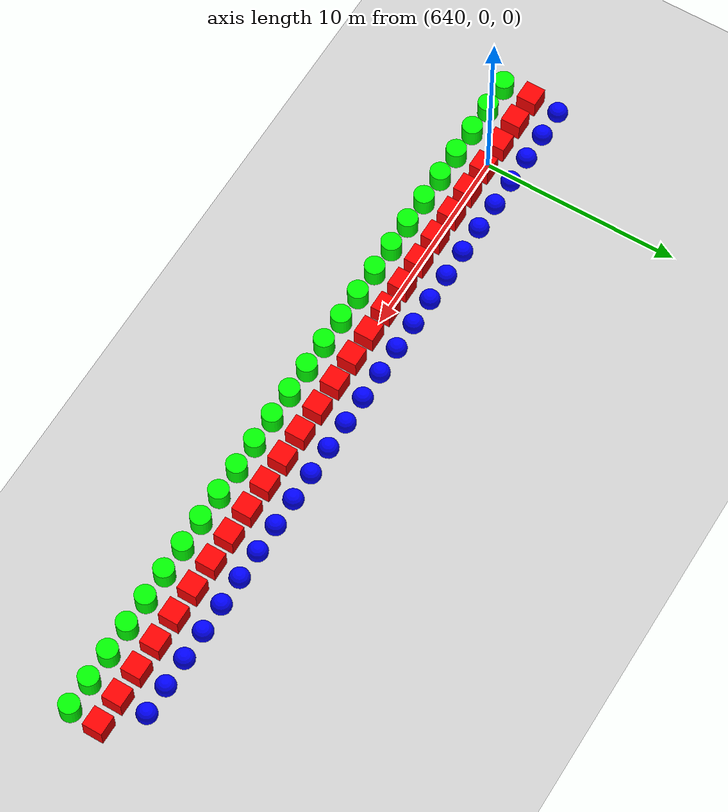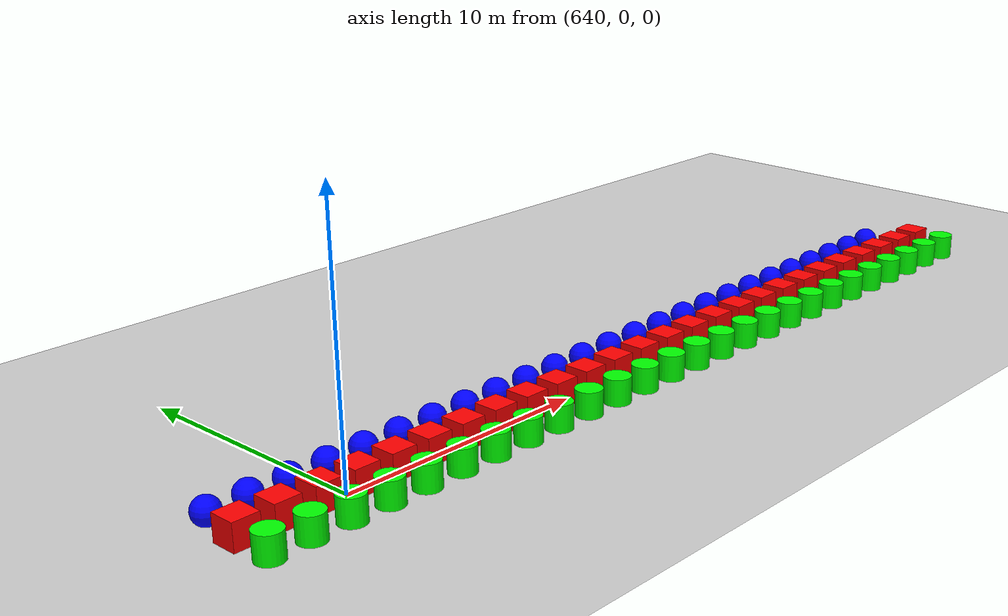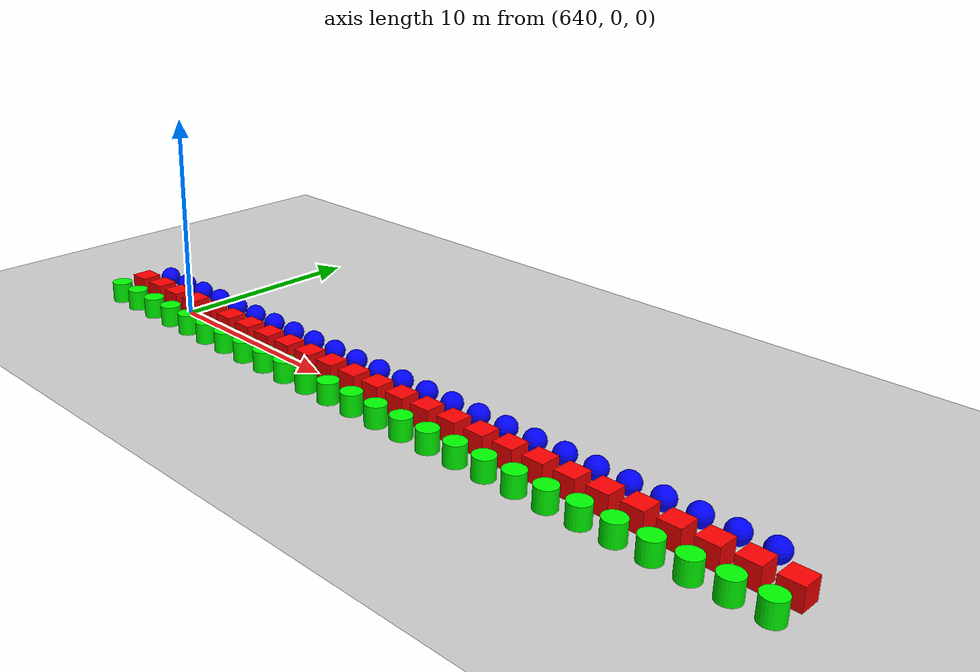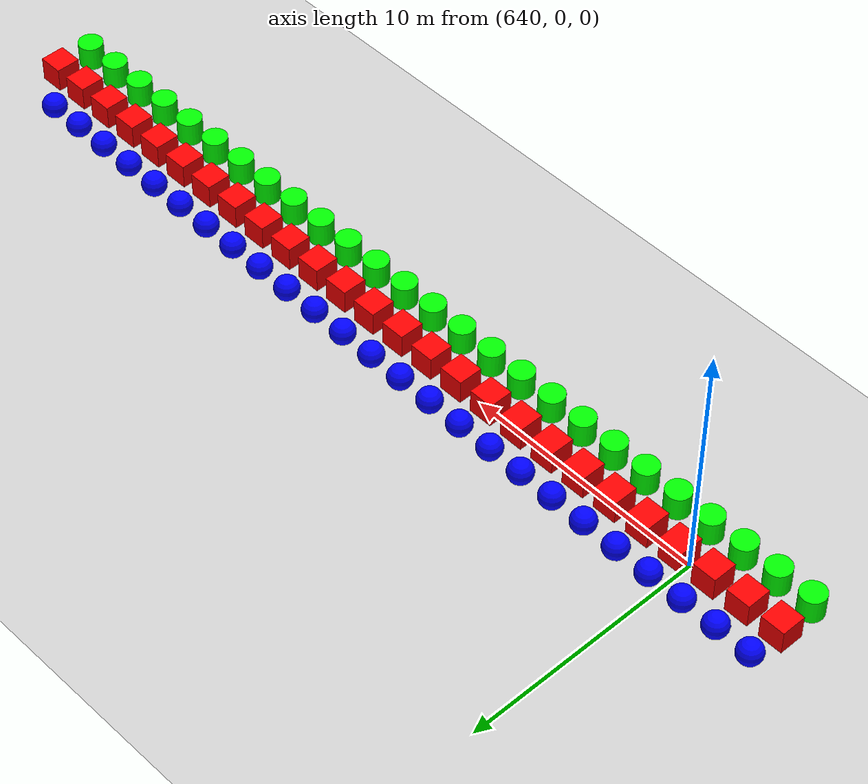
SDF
<sdf version="1.6">
 <world name="shapes">
  <model name="ground_plane">
   <static>true</static>
   <link name="link">
    <collision name="collision">
     <geometry><plane><normal>0 0 1</normal><size>100 100</size></plane></geometry>
    </collision>
    <visual name="visual">
     <geometry><plane><normal>0 0 1</normal><size>100 100</size></plane></geometry>
     <material>
      <ambient>0.8 0.8 0.8 1</ambient>
      <diffuse>0.8 0.8 0.8 1</diffuse>
      <specular>0.8 0.8 0.8 1</specular>
     </material>
    </visual>
   </link>
  </model>
  <model name="box_924">
   <static>false</static>
   <pose>636.0 0 0.5 0 0 0</pose>
   <link name="box_link">
    <inertial>
     <inertia><ixx>1</ixx><ixy>0</ixy><ixz>0</ixz><iyy>1</iyy><iyz>0</iyz><izz>1</izz></inertia>
     <mass>1.0</mass>
    </inertial>
    <collision name="box_collision"><geometry><box><size>1 1 1</size></box></geometry></collision>
    <visual name="box_visual">
     <geometry><box><size>1 1 1</size></box></geometry>
     <material><ambient>1 0 0 1</ambient><diffuse>1 0 0 1</diffuse><specular>1 0 0 1</specular></material>
    </visual>
   </link>
  </model>
  <model name="cylinder_924">
   <static>false</static>
   <pose>636.0 -1.5 0.5 0 0 0</pose>
   <link name="cylinder_link">
    <inertial>
     <inertia><ixx>2</ixx><ixy>0</ixy><ixz>0</ixz><iyy>2</iyy><iyz>0</iyz><izz>2</izz></inertia>
     <mass>2.0</mass>
    </inertial>
    <collision name="cylinder_collision">
     <geometry><cylinder><radius>0.5</radius><length>1.0</length></cylinder></geometry>
    </collision>
    <visual name="cylinder_visual">
     <geometry><cylinder><radius>0.5</radius><length>1.0</length></cylinder></geometry>
     <material><ambient>0 1 0 1</ambient><diffuse>0 1 0 1</diffuse><specular>0 1 0 1</specular></material>
    </visual>
   </link>
  </model>
  <model name="sphere_924">
   <static>false</static>
   <pose>636.0 1.5 0.5 0 0 0</pose>
   <link name="sphere_link">
    <inertial>
     <inertia><ixx>3</ixx><ixy>0</ixy><ixz>0</ixz><iyy>3</iyy><iyz>0</iyz><izz>3</izz></inertia>
     <mass>3.0</mass>
    </inertial>
    <collision name="sphere_collision"><geometry><sphere><radius>0.5</radius></sphere></geometry></collision>
    <visual name="sphere_visual">
     <geometry><sphere><radius>0.5</radius></sphere></geometry>
     <material><ambient>0 0 1 1</ambient><diffuse>0 0 1 1</diffuse><specular>0 0 1 1</specular></material>
    </visual>
   </link>
  </model>
  <model name="box_925">
   <static>false</static>
   <pose>637.5 0 0.5 0 0 0</pose>
   <link name="box_link">
    <inertial>
     <inertia><ixx>1</ixx><ixy>0</ixy><ixz>0</ixz><iyy>1</iyy><iyz>0</iyz><izz>1</izz></inertia>
     <mass>1.0</mass>
    </inertial>
    <collision name="box_collision"><geometry><box><size>1 1 1</size></box></geometry></collision>
    <visual name="box_visual">
     <geometry><box><size>1 1 1</size></box></geometry>
     <material><ambient>1 0 0 1</ambient><diffuse>1 0 0 1</diffuse><specular>1 0 0 1</specular></material>
    </visual>
   </link>
  </model>
  <model name="cylinder_925">
   <static>false</static>
   <pose>637.5 -1.5 0.5 0 0 0</pose>
   <link name="cylinder_link">
    <inertial>
     <inertia><ixx>2</ixx><ixy>0</ixy><ixz>0</ixz><iyy>2</iyy><iyz>0</iyz><izz>2</izz></inertia>
     <mass>2.0</mass>
    </inertial>
    <collision name="cylinder_collision">
     <geometry><cylinder><radius>0.5</radius><length>1.0</length></cylinder></geometry>
    </collision>
    <visual name="cylinder_visual">
     <geometry><cylinder><radius>0.5</radius><length>1.0</length></cylinder></geometry>
     <material><ambient>0 1 0 1</ambient><diffuse>0 1 0 1</diffuse><specular>0 1 0 1</specular></material>
    </visual>
   </link>
  </model>
  <model name="sphere_925">
   <static>false</static>
   <pose>637.5 1.5 0.5 0 0 0</pose>
   <link name="sphere_link">
    <inertial>
     <inertia><ixx>3</ixx><ixy>0</ixy><ixz>0</ixz><iyy>3</iyy><iyz>0</iyz><izz>3</izz></inertia>
     <mass>3.0</mass>
    </inertial>
    <collision name="sphere_collision"><geometry><sphere><radius>0.5</radius></sphere></geometry></collision>
    <visual name="sphere_visual">
     <geometry><sphere><radius>0.5</radius></sphere></geometry>
     <material><ambient>0 0 1 1</ambient><diffuse>0 0 1 1</diffuse><specular>0 0 1 1</specular></material>
    </visual>
   </link>
  </model>
  <model name="box_926">
   <static>false</static>
   <pose>639.0 0 0.5 0 0 0</pose>
   <link name="box_link">
    <inertial>
     <inertia><ixx>1</ixx><ixy>0</ixy><ixz>0</ixz><iyy>1</iyy><iyz>0</iyz><izz>1</izz></inertia>
     <mass>1.0</mass>
    </inertial>
    <collision name="box_collision"><geometry><box><size>1 1 1</size></box></geometry></collision>
    <visual name="box_visual">
     <geometry><box><size>1 1 1</size></box></geometry>
     <material><ambient>1 0 0 1</ambient><diffuse>1 0 0 1</diffuse><specular>1 0 0 1</specular></material>
    </visual>
   </link>
  </model>
  <model name="cylinder_926">
   <static>false</static>
   <pose>639.0 -1.5 0.5 0 0 0</pose>
   <link name="cylinder_link">
    <inertial>
     <inertia><ixx>2</ixx><ixy>0</ixy><ixz>0</ixz><iyy>2</iyy><iyz>0</iyz><izz>2</izz></inertia>
     <mass>2.0</mass>
    </inertial>
    <collision name="cylinder_collision">
     <geometry><cylinder><radius>0.5</radius><length>1.0</length></cylinder></geometry>
    </collision>
    <visual name="cylinder_visual">
     <geometry><cylinder><radius>0.5</radius><length>1.0</length></cylinder></geometry>
     <material><ambient>0 1 0 1</ambient><diffuse>0 1 0 1</diffuse><specular>0 1 0 1</specular></material>
    </visual>
   </link>
  </model>
  <model name="sphere_926">
   <static>false</static>
   <pose>639.0 1.5 0.5 0 0 0</pose>
   <link name="sphere_link">
    <inertial>
     <inertia><ixx>3</ixx><ixy>0</ixy><ixz>0</ixz><iyy>3</iyy><iyz>0</iyz><izz>3</izz></inertia>
     <mass>3.0</mass>
    </inertial>
    <collision name="sphere_collision"><geometry><sphere><radius>0.5</radius></sphere></geometry></collision>
    <visual name="sphere_visual">
     <geometry><sphere><radius>0.5</radius></sphere></geometry>
     <material><ambient>0 0 1 1</ambient><diffuse>0 0 1 1</diffuse><specular>0 0 1 1</specular></material>
    </visual>
   </link>
  </model>
  <model name="box_927">
   <static>false</static>
   <pose>640.5 0 0.5 0 0 0</pose>
   <link name="box_link">
    <inertial>
     <inertia><ixx>1</ixx><ixy>0</ixy><ixz>0</ixz><iyy>1</iyy><iyz>0</iyz><izz>1</izz></inertia>
     <mass>1.0</mass>
    </inertial>
    <collision name="box_collision"><geometry><box><size>1 1 1</size></box></geometry></collision>
    <visual name="box_visual">
     <geometry><box><size>1 1 1</size></box></geometry>
     <material><ambient>1 0 0 1</ambient><diffuse>1 0 0 1</diffuse><specular>1 0 0 1</specular></material>
    </visual>
   </link>
  </model>
  <model name="cylinder_927">
   <static>false</static>
   <pose>640.5 -1.5 0.5 0 0 0</pose>
   <link name="cylinder_link">
    <inertial>
     <inertia><ixx>2</ixx><ixy>0</ixy><ixz>0</ixz><iyy>2</iyy><iyz>0</iyz><izz>2</izz></inertia>
     <mass>2.0</mass>
    </inertial>
    <collision name="cylinder_collision">
     <geometry><cylinder><radius>0.5</radius><length>1.0</length></cylinder></geometry>
    </collision>
    <visual name="cylinder_visual">
     <geometry><cylinder><radius>0.5</radius><length>1.0</length></cylinder></geometry>
     <material><ambient>0 1 0 1</ambient><diffuse>0 1 0 1</diffuse><specular>0 1 0 1</specular></material>
    </visual>
   </link>
  </model>
  <model name="sphere_927">
   <static>false</static>
   <pose>640.5 1.5 0.5 0 0 0</pose>
   <link name="sphere_link">
    <inertial>
     <inertia><ixx>3</ixx><ixy>0</ixy><ixz>0</ixz><iyy>3</iyy><iyz>0</iyz><izz>3</izz></inertia>
     <mass>3.0</mass>
    </inertial>
    <collision name="sphere_collision"><geometry><sphere><radius>0.5</radius></sphere></geometry></collision>
    <visual name="sphere_visual">
     <geometry><sphere><radius>0.5</radius></sphere></geometry>
     <material><ambient>0 0 1 1</ambient><diffuse>0 0 1 1</diffuse><specular>0 0 1 1</specular></material>
    </visual>
   </link>
  </model>
  <model name="box_928">
   <static>false</static>
   <pose>642.0 0 0.5 0 0 0</pose>
   <link name="box_link">
    <inertial>
     <inertia><ixx>1</ixx><ixy>0</ixy><ixz>0</ixz><iyy>1</iyy><iyz>0</iyz><izz>1</izz></inertia>
     <mass>1.0</mass>
    </inertial>
    <collision name="box_collision"><geometry><box><size>1 1 1</size></box></geometry></collision>
    <visual name="box_visual">
     <geometry><box><size>1 1 1</size></box></geometry>
     <material><ambient>1 0 0 1</ambient><diffuse>1 0 0 1</diffuse><specular>1 0 0 1</specular></material>
    </visual>
   </link>
  </model>
  <model name="cylinder_928">
   <static>false</static>
   <pose>642.0 -1.5 0.5 0 0 0</pose>
   <link name="cylinder_link">
    <inertial>
     <inertia><ixx>2</ixx><ixy>0</ixy><ixz>0</ixz><iyy>2</iyy><iyz>0</iyz><izz>2</izz></inertia>
     <mass>2.0</mass>
    </inertial>
    <collision name="cylinder_collision">
     <geometry><cylinder><radius>0.5</radius><length>1.0</length></cylinder></geometry>
    </collision>
    <visual name="cylinder_visual">
     <geometry><cylinder><radius>0.5</radius><length>1.0</length></cylinder></geometry>
     <material><ambient>0 1 0 1</ambient><diffuse>0 1 0 1</diffuse><specular>0 1 0 1</specular></material>
    </visual>
   </link>
  </model>
  <model name="sphere_928">
   <static>false</static>
   <pose>642.0 1.5 0.5 0 0 0</pose>
   <link name="sphere_link">
    <inertial>
     <inertia><ixx>3</ixx><ixy>0</ixy><ixz>0</ixz><iyy>3</iyy><iyz>0</iyz><izz>3</izz></inertia>
     <mass>3.0</mass>
    </inertial>
    <collision name="sphere_collision"><geometry><sphere><radius>0.5</radius></sphere></geometry></collision>
    <visual name="sphere_visual">
     <geometry><sphere><radius>0.5</radius></sphere></geometry>
     <material><ambient>0 0 1 1</ambient><diffuse>0 0 1 1</diffuse><specular>0 0 1 1</specular></material>
    </visual>
   </link>
  </model>
  <model name="box_929">
   <static>false</static>
   <pose>643.5 0 0.5 0 0 0</pose>
   <link name="box_link">
    <inertial>
     <inertia><ixx>1</ixx><ixy>0</ixy><ixz>0</ixz><iyy>1</iyy><iyz>0</iyz><izz>1</izz></inertia>
     <mass>1.0</mass>
    </inertial>
    <collision name="box_collision"><geometry><box><size>1 1 1</size></box></geometry></collision>
    <visual name="box_visual">
     <geometry><box><size>1 1 1</size></box></geometry>
     <material><ambient>1 0 0 1</ambient><diffuse>1 0 0 1</diffuse><specular>1 0 0 1</specular></material>
    </visual>
   </link>
  </model>
  <model name="cylinder_929">
   <static>false</static>
   <pose>643.5 -1.5 0.5 0 0 0</pose>
   <link name="cylinder_link">
    <inertial>
     <inertia><ixx>2</ixx><ixy>0</ixy><ixz>0</ixz><iyy>2</iyy><iyz>0</iyz><izz>2</izz></inertia>
     <mass>2.0</mass>
    </inertial>
    <collision name="cylinder_collision">
     <geometry><cylinder><radius>0.5</radius><length>1.0</length></cylinder></geometry>
    </collision>
    <visual name="cylinder_visual">
     <geometry><cylinder><radius>0.5</radius><length>1.0</length></cylinder></geometry>
     <material><ambient>0 1 0 1</ambient><diffuse>0 1 0 1</diffuse><specular>0 1 0 1</specular></material>
    </visual>
   </link>
  </model>
  <model name="sphere_929">
   <static>false</static>
   <pose>643.5 1.5 0.5 0 0 0</pose>
   <link name="sphere_link">
    <inertial>
     <inertia><ixx>3</ixx><ixy>0</ixy><ixz>0</ixz><iyy>3</iyy><iyz>0</iyz><izz>3</izz></inertia>
     <mass>3.0</mass>
    </inertial>
    <collision name="sphere_collision"><geometry><sphere><radius>0.5</radius></sphere></geometry></collision>
    <visual name="sphere_visual">
     <geometry><sphere><radius>0.5</radius></sphere></geometry>
     <material><ambient>0 0 1 1</ambient><diffuse>0 0 1 1</diffuse><specular>0 0 1 1</specular></material>
    </visual>
   </link>
  </model>
  <model name="box_930">
   <static>false</static>
   <pose>645.0 0 0.5 0 0 0</pose>
   <link name="box_link">
    <inertial>
     <inertia><ixx>1</ixx><ixy>0</ixy><ixz>0</ixz><iyy>1</iyy><iyz>0</iyz><izz>1</izz></inertia>
     <mass>1.0</mass>
    </inertial>
    <collision name="box_collision"><geometry><box><size>1 1 1</size></box></geometry></collision>
    <visual name="box_visual">
     <geometry><box><size>1 1 1</size></box></geometry>
     <material><ambient>1 0 0 1</ambient><diffuse>1 0 0 1</diffuse><specular>1 0 0 1</specular></material>
    </visual>
   </link>
  </model>
  <model name="cylinder_930">
   <static>false</static>
   <pose>645.0 -1.5 0.5 0 0 0</pose>
   <link name="cylinder_link">
    <inertial>
     <inertia><ixx>2</ixx><ixy>0</ixy><ixz>0</ixz><iyy>2</iyy><iyz>0</iyz><izz>2</izz></inertia>
     <mass>2.0</mass>
    </inertial>
    <collision name="cylinder_collision">
     <geometry><cylinder><radius>0.5</radius><length>1.0</length></cylinder></geometry>
    </collision>
    <visual name="cylinder_visual">
     <geometry><cylinder><radius>0.5</radius><length>1.0</length></cylinder></geometry>
     <material><ambient>0 1 0 1</ambient><diffuse>0 1 0 1</diffuse><specular>0 1 0 1</specular></material>
    </visual>
   </link>
  </model>
  <model name="sphere_930">
   <static>false</static>
   <pose>645.0 1.5 0.5 0 0 0</pose>
   <link name="sphere_link">
    <inertial>
     <inertia><ixx>3</ixx><ixy>0</ixy><ixz>0</ixz><iyy>3</iyy><iyz>0</iyz><izz>3</izz></inertia>
     <mass>3.0</mass>
    </inertial>
    <collision name="sphere_collision"><geometry><sphere><radius>0.5</radius></sphere></geometry></collision>
    <visual name="sphere_visual">
     <geometry><sphere><radius>0.5</radius></sphere></geometry>
     <material><ambient>0 0 1 1</ambient><diffuse>0 0 1 1</diffuse><specular>0 0 1 1</specular></material>
    </visual>
   </link>
  </model>
  <model name="box_931">
   <static>false</static>
   <pose>646.5 0 0.5 0 0 0</pose>
   <link name="box_link">
    <inertial>
     <inertia><ixx>1</ixx><ixy>0</ixy><ixz>0</ixz><iyy>1</iyy><iyz>0</iyz><izz>1</izz></inertia>
     <mass>1.0</mass>
    </inertial>
    <collision name="box_collision"><geometry><box><size>1 1 1</size></box></geometry></collision>
    <visual name="box_visual">
     <geometry><box><size>1 1 1</size></box></geometry>
     <material><ambient>1 0 0 1</ambient><diffuse>1 0 0 1</diffuse><specular>1 0 0 1</specular></material>
    </visual>
   </link>
  </model>
  <model name="cylinder_931">
   <static>false</static>
   <pose>646.5 -1.5 0.5 0 0 0</pose>
   <link name="cylinder_link">
    <inertial>
     <inertia><ixx>2</ixx><ixy>0</ixy><ixz>0</ixz><iyy>2</iyy><iyz>0</iyz><izz>2</izz></inertia>
     <mass>2.0</mass>
    </inertial>
    <collision name="cylinder_collision">
     <geometry><cylinder><radius>0.5</radius><length>1.0</length></cylinder></geometry>
    </collision>
    <visual name="cylinder_visual">
     <geometry><cylinder><radius>0.5</radius><length>1.0</length></cylinder></geometry>
     <material><ambient>0 1 0 1</ambient><diffuse>0 1 0 1</diffuse><specular>0 1 0 1</specular></material>
    </visual>
   </link>
  </model>
  <model name="sphere_931">
   <static>false</static>
   <pose>646.5 1.5 0.5 0 0 0</pose>
   <link name="sphere_link">
    <inertial>
     <inertia><ixx>3</ixx><ixy>0</ixy><ixz>0</ixz><iyy>3</iyy><iyz>0</iyz><izz>3</izz></inertia>
     <mass>3.0</mass>
    </inertial>
    <collision name="sphere_collision"><geometry><sphere><radius>0.5</radius></sphere></geometry></collision>
    <visual name="sphere_visual">
     <geometry><sphere><radius>0.5</radius></sphere></geometry>
     <material><ambient>0 0 1 1</ambient><diffuse>0 0 1 1</diffuse><specular>0 0 1 1</specular></material>
    </visual>
   </link>
  </model>
  <model name="box_932">
   <static>false</static>
   <pose>648.0 0 0.5 0 0 0</pose>
   <link name="box_link">
    <inertial>
     <inertia><ixx>1</ixx><ixy>0</ixy><ixz>0</ixz><iyy>1</iyy><iyz>0</iyz><izz>1</izz></inertia>
     <mass>1.0</mass>
    </inertial>
    <collision name="box_collision"><geometry><box><size>1 1 1</size></box></geometry></collision>
    <visual name="box_visual">
     <geometry><box><size>1 1 1</size></box></geometry>
     <material><ambient>1 0 0 1</ambient><diffuse>1 0 0 1</diffuse><specular>1 0 0 1</specular></material>
    </visual>
   </link>
  </model>
  <model name="cylinder_932">
   <static>false</static>
   <pose>648.0 -1.5 0.5 0 0 0</pose>
   <link name="cylinder_link">
    <inertial>
     <inertia><ixx>2</ixx><ixy>0</ixy><ixz>0</ixz><iyy>2</iyy><iyz>0</iyz><izz>2</izz></inertia>
     <mass>2.0</mass>
    </inertial>
    <collision name="cylinder_collision">
     <geometry><cylinder><radius>0.5</radius><length>1.0</length></cylinder></geometry>
    </collision>
    <visual name="cylinder_visual">
     <geometry><cylinder><radius>0.5</radius><length>1.0</length></cylinder></geometry>
     <material><ambient>0 1 0 1</ambient><diffuse>0 1 0 1</diffuse><specular>0 1 0 1</specular></material>
    </visual>
   </link>
  </model>
  <model name="sphere_932">
   <static>false</static>
   <pose>648.0 1.5 0.5 0 0 0</pose>
   <link name="sphere_link">
    <inertial>
     <inertia><ixx>3</ixx><ixy>0</ixy><ixz>0</ixz><iyy>3</iyy><iyz>0</iyz><izz>3</izz></inertia>
     <mass>3.0</mass>
    </inertial>
    <collision name="sphere_collision"><geometry><sphere><radius>0.5</radius></sphere></geometry></collision>
    <visual name="sphere_visual">
     <geometry><sphere><radius>0.5</radius></sphere></geometry>
     <material><ambient>0 0 1 1</ambient><diffuse>0 0 1 1</diffuse><specular>0 0 1 1</specular></material>
    </visual>
   </link>
  </model>
  <model name="box_933">
   <static>false</static>
   <pose>649.5 0 0.5 0 0 0</pose>
   <link name="box_link">
    <inertial>
     <inertia><ixx>1</ixx><ixy>0</ixy><ixz>0</ixz><iyy>1</iyy><iyz>0</iyz><izz>1</izz></inertia>
     <mass>1.0</mass>
    </inertial>
    <collision name="box_collision"><geometry><box><size>1 1 1</size></box></geometry></collision>
    <visual name="box_visual">
     <geometry><box><size>1 1 1</size></box></geometry>
     <material><ambient>1 0 0 1</ambient><diffuse>1 0 0 1</diffuse><specular>1 0 0 1</specular></material>
    </visual>
   </link>
  </model>
  <model name="cylinder_933">
   <static>false</static>
   <pose>649.5 -1.5 0.5 0 0 0</pose>
   <link name="cylinder_link">
    <inertial>
     <inertia><ixx>2</ixx><ixy>0</ixy><ixz>0</ixz><iyy>2</iyy><iyz>0</iyz><izz>2</izz></inertia>
     <mass>2.0</mass>
    </inertial>
    <collision name="cylinder_collision">
     <geometry><cylinder><radius>0.5</radius><length>1.0</length></cylinder></geometry>
    </collision>
    <visual name="cylinder_visual">
     <geometry><cylinder><radius>0.5</radius><length>1.0</length></cylinder></geometry>
     <material><ambient>0 1 0 1</ambient><diffuse>0 1 0 1</diffuse><specular>0 1 0 1</specular></material>
    </visual>
   </link>
  </model>
  <model name="sphere_933">
   <static>false</static>
   <pose>649.5 1.5 0.5 0 0 0</pose>
   <link name="sphere_link">
    <inertial>
     <inertia><ixx>3</ixx><ixy>0</ixy><ixz>0</ixz><iyy>3</iyy><iyz>0</iyz><izz>3</izz></inertia>
     <mass>3.0</mass>
    </inertial>
    <collision name="sphere_collision"><geometry><sphere><radius>0.5</radius></sphere></geometry></collision>
    <visual name="sphere_visual">
     <geometry><sphere><radius>0.5</radius></sphere></geometry>
     <material><ambient>0 0 1 1</ambient><diffuse>0 0 1 1</diffuse><specular>0 0 1 1</specular></material>
    </visual>
   </link>
  </model>
  <model name="box_934">
   <static>false</static>
   <pose>651.0 0 0.5 0 0 0</pose>
   <link name="box_link">
    <inertial>
     <inertia><ixx>1</ixx><ixy>0</ixy><ixz>0</ixz><iyy>1</iyy><iyz>0</iyz><izz>1</izz></inertia>
     <mass>1.0</mass>
    </inertial>
    <collision name="box_collision"><geometry><box><size>1 1 1</size></box></geometry></collision>
    <visual name="box_visual">
     <geometry><box><size>1 1 1</size></box></geometry>
     <material><ambient>1 0 0 1</ambient><diffuse>1 0 0 1</diffuse><specular>1 0 0 1</specular></material>
    </visual>
   </link>
  </model>
  <model name="cylinder_934">
   <static>false</static>
   <pose>651.0 -1.5 0.5 0 0 0</pose>
   <link name="cylinder_link">
    <inertial>
     <inertia><ixx>2</ixx><ixy>0</ixy><ixz>0</ixz><iyy>2</iyy><iyz>0</iyz><izz>2</izz></inertia>
     <mass>2.0</mass>
    </inertial>
    <collision name="cylinder_collision">
     <geometry><cylinder><radius>0.5</radius><length>1.0</length></cylinder></geometry>
    </collision>
    <visual name="cylinder_visual">
     <geometry><cylinder><radius>0.5</radius><length>1.0</length></cylinder></geometry>
     <material><ambient>0 1 0 1</ambient><diffuse>0 1 0 1</diffuse><specular>0 1 0 1</specular></material>
    </visual>
   </link>
  </model>
  <model name="sphere_934">
   <static>false</static>
   <pose>651.0 1.5 0.5 0 0 0</pose>
   <link name="sphere_link">
    <inertial>
     <inertia><ixx>3</ixx><ixy>0</ixy><ixz>0</ixz><iyy>3</iyy><iyz>0</iyz><izz>3</izz></inertia>
     <mass>3.0</mass>
    </inertial>
    <collision name="sphere_collision"><geometry><sphere><radius>0.5</radius></sphere></geometry></collision>
    <visual name="sphere_visual">
     <geometry><sphere><radius>0.5</radius></sphere></geometry>
     <material><ambient>0 0 1 1</ambient><diffuse>0 0 1 1</diffuse><specular>0 0 1 1</specular></material>
    </visual>
   </link>
  </model>
  <model name="box_935">
   <static>false</static>
   <pose>652.5 0 0.5 0 0 0</pose>
   <link name="box_link">
    <inertial>
     <inertia><ixx>1</ixx><ixy>0</ixy><ixz>0</ixz><iyy>1</iyy><iyz>0</iyz><izz>1</izz></inertia>
     <mass>1.0</mass>
    </inertial>
    <collision name="box_collision"><geometry><box><size>1 1 1</size></box></geometry></collision>
    <visual name="box_visual">
     <geometry><box><size>1 1 1</size></box></geometry>
     <material><ambient>1 0 0 1</ambient><diffuse>1 0 0 1</diffuse><specular>1 0 0 1</specular></material>
    </visual>
   </link>
  </model>
  <model name="cylinder_935">
   <static>false</static>
   <pose>652.5 -1.5 0.5 0 0 0</pose>
   <link name="cylinder_link">
    <inertial>
     <inertia><ixx>2</ixx><ixy>0</ixy><ixz>0</ixz><iyy>2</iyy><iyz>0</iyz><izz>2</izz></inertia>
     <mass>2.0</mass>
    </inertial>
    <collision name="cylinder_collision">
     <geometry><cylinder><radius>0.5</radius><length>1.0</length></cylinder></geometry>
    </collision>
    <visual name="cylinder_visual">
     <geometry><cylinder><radius>0.5</radius><length>1.0</length></cylinder></geometry>
     <material><ambient>0 1 0 1</ambient><diffuse>0 1 0 1</diffuse><specular>0 1 0 1</specular></material>
    </visual>
   </link>
  </model>
  <model name="sphere_935">
   <static>false</static>
   <pose>652.5 1.5 0.5 0 0 0</pose>
   <link name="sphere_link">
    <inertial>
     <inertia><ixx>3</ixx><ixy>0</ixy><ixz>0</ixz><iyy>3</iyy><iyz>0</iyz><izz>3</izz></inertia>
     <mass>3.0</mass>
    </inertial>
    <collision name="sphere_collision"><geometry><sphere><radius>0.5</radius></sphere></geometry></collision>
    <visual name="sphere_visual">
     <geometry><sphere><radius>0.5</radius></sphere></geometry>
     <material><ambient>0 0 1 1</ambient><diffuse>0 0 1 1</diffuse><specular>0 0 1 1</specular></material>
    </visual>
   </link>
  </model>
  <model name="box_936">
   <static>false</static>
   <pose>654.0 0 0.5 0 0 0</pose>
   <link name="box_link">
    <inertial>
     <inertia><ixx>1</ixx><ixy>0</ixy><ixz>0</ixz><iyy>1</iyy><iyz>0</iyz><izz>1</izz></inertia>
     <mass>1.0</mass>
    </inertial>
    <collision name="box_collision"><geometry><box><size>1 1 1</size></box></geometry></collision>
    <visual name="box_visual">
     <geometry><box><size>1 1 1</size></box></geometry>
     <material><ambient>1 0 0 1</ambient><diffuse>1 0 0 1</diffuse><specular>1 0 0 1</specular></material>
    </visual>
   </link>
  </model>
  <model name="cylinder_936">
   <static>false</static>
   <pose>654.0 -1.5 0.5 0 0 0</pose>
   <link name="cylinder_link">
    <inertial>
     <inertia><ixx>2</ixx><ixy>0</ixy><ixz>0</ixz><iyy>2</iyy><iyz>0</iyz><izz>2</izz></inertia>
     <mass>2.0</mass>
    </inertial>
    <collision name="cylinder_collision">
     <geometry><cylinder><radius>0.5</radius><length>1.0</length></cylinder></geometry>
    </collision>
    <visual name="cylinder_visual">
     <geometry><cylinder><radius>0.5</radius><length>1.0</length></cylinder></geometry>
     <material><ambient>0 1 0 1</ambient><diffuse>0 1 0 1</diffuse><specular>0 1 0 1</specular></material>
    </visual>
   </link>
  </model>
  <model name="sphere_936">
   <static>false</static>
   <pose>654.0 1.5 0.5 0 0 0</pose>
   <link name="sphere_link">
    <inertial>
     <inertia><ixx>3</ixx><ixy>0</ixy><ixz>0</ixz><iyy>3</iyy><iyz>0</iyz><izz>3</izz></inertia>
     <mass>3.0</mass>
    </inertial>
    <collision name="sphere_collision"><geometry><sphere><radius>0.5</radius></sphere></geometry></collision>
    <visual name="sphere_visual">
     <geometry><sphere><radius>0.5</radius></sphere></geometry>
     <material><ambient>0 0 1 1</ambient><diffuse>0 0 1 1</diffuse><specular>0 0 1 1</specular></material>
    </visual>
   </link>
  </model>
  <model name="box_937">
   <static>false</static>
   <pose>655.5 0 0.5 0 0 0</pose>
   <link name="box_link">
    <inertial>
     <inertia><ixx>1</ixx><ixy>0</ixy><ixz>0</ixz><iyy>1</iyy><iyz>0</iyz><izz>1</izz></inertia>
     <mass>1.0</mass>
    </inertial>
    <collision name="box_collision"><geometry><box><size>1 1 1</size></box></geometry></collision>
    <visual name="box_visual">
     <geometry><box><size>1 1 1</size></box></geometry>
     <material><ambient>1 0 0 1</ambient><diffuse>1 0 0 1</diffuse><specular>1 0 0 1</specular></material>
    </visual>
   </link>
  </model>
  <model name="cylinder_937">
   <static>false</static>
   <pose>655.5 -1.5 0.5 0 0 0</pose>
   <link name="cylinder_link">
    <inertial>
     <inertia><ixx>2</ixx><ixy>0</ixy><ixz>0</ixz><iyy>2</iyy><iyz>0</iyz><izz>2</izz></inertia>
     <mass>2.0</mass>
    </inertial>
    <collision name="cylinder_collision">
     <geometry><cylinder><radius>0.5</radius><length>1.0</length></cylinder></geometry>
    </collision>
    <visual name="cylinder_visual">
     <geometry><cylinder><radius>0.5</radius><length>1.0</length></cylinder></geometry>
     <material><ambient>0 1 0 1</ambient><diffuse>0 1 0 1</diffuse><specular>0 1 0 1</specular></material>
    </visual>
   </link>
  </model>
  <model name="sphere_937">
   <static>false</static>
   <pose>655.5 1.5 0.5 0 0 0</pose>
   <link name="sphere_link">
    <inertial>
     <inertia><ixx>3</ixx><ixy>0</ixy><ixz>0</ixz><iyy>3</iyy><iyz>0</iyz><izz>3</izz></inertia>
     <mass>3.0</mass>
    </inertial>
    <collision name="sphere_collision"><geometry><sphere><radius>0.5</radius></sphere></geometry></collision>
    <visual name="sphere_visual">
     <geometry><sphere><radius>0.5</radius></sphere></geometry>
     <material><ambient>0 0 1 1</ambient><diffuse>0 0 1 1</diffuse><specular>0 0 1 1</specular></material>
    </visual>
   </link>
  </model>
  <model name="box_938">
   <static>false</static>
   <pose>657.0 0 0.5 0 0 0</pose>
   <link name="box_link">
    <inertial>
     <inertia><ixx>1</ixx><ixy>0</ixy><ixz>0</ixz><iyy>1</iyy><iyz>0</iyz><izz>1</izz></inertia>
     <mass>1.0</mass>
    </inertial>
    <collision name="box_collision"><geometry><box><size>1 1 1</size></box></geometry></collision>
    <visual name="box_visual">
     <geometry><box><size>1 1 1</size></box></geometry>
     <material><ambient>1 0 0 1</ambient><diffuse>1 0 0 1</diffuse><specular>1 0 0 1</specular></material>
    </visual>
   </link>
  </model>
  <model name="cylinder_938">
   <static>false</static>
   <pose>657.0 -1.5 0.5 0 0 0</pose>
   <link name="cylinder_link">
    <inertial>
     <inertia><ixx>2</ixx><ixy>0</ixy><ixz>0</ixz><iyy>2</iyy><iyz>0</iyz><izz>2</izz></inertia>
     <mass>2.0</mass>
    </inertial>
    <collision name="cylinder_collision">
     <geometry><cylinder><radius>0.5</radius><length>1.0</length></cylinder></geometry>
    </collision>
    <visual name="cylinder_visual">
     <geometry><cylinder><radius>0.5</radius><length>1.0</length></cylinder></geometry>
     <material><ambient>0 1 0 1</ambient><diffuse>0 1 0 1</diffuse><specular>0 1 0 1</specular></material>
    </visual>
   </link>
  </model>
  <model name="sphere_938">
   <static>false</static>
   <pose>657.0 1.5 0.5 0 0 0</pose>
   <link name="sphere_link">
    <inertial>
     <inertia><ixx>3</ixx><ixy>0</ixy><ixz>0</ixz><iyy>3</iyy><iyz>0</iyz><izz>3</izz></inertia>
     <mass>3.0</mass>
    </inertial>
    <collision name="sphere_collision"><geometry><sphere><radius>0.5</radius></sphere></geometry></collision>
    <visual name="sphere_visual">
     <geometry><sphere><radius>0.5</radius></sphere></geometry>
     <material><ambient>0 0 1 1</ambient><diffuse>0 0 1 1</diffuse><specular>0 0 1 1</specular></material>
    </visual>
   </link>
  </model>
  <model name="box_939">
   <static>false</static>
   <pose>658.5 0 0.5 0 0 0</pose>
   <link name="box_link">
    <inertial>
     <inertia><ixx>1</ixx><ixy>0</ixy><ixz>0</ixz><iyy>1</iyy><iyz>0</iyz><izz>1</izz></inertia>
     <mass>1.0</mass>
    </inertial>
    <collision name="box_collision"><geometry><box><size>1 1 1</size></box></geometry></collision>
    <visual name="box_visual">
     <geometry><box><size>1 1 1</size></box></geometry>
     <material><ambient>1 0 0 1</ambient><diffuse>1 0 0 1</diffuse><specular>1 0 0 1</specular></material>
    </visual>
   </link>
  </model>
  <model name="cylinder_939">
   <static>false</static>
   <pose>658.5 -1.5 0.5 0 0 0</pose>
   <link name="cylinder_link">
    <inertial>
     <inertia><ixx>2</ixx><ixy>0</ixy><ixz>0</ixz><iyy>2</iyy><iyz>0</iyz><izz>2</izz></inertia>
     <mass>2.0</mass>
    </inertial>
    <collision name="cylinder_collision">
     <geometry><cylinder><radius>0.5</radius><length>1.0</length></cylinder></geometry>
    </collision>
    <visual name="cylinder_visual">
     <geometry><cylinder><radius>0.5</radius><length>1.0</length></cylinder></geometry>
     <material><ambient>0 1 0 1</ambient><diffuse>0 1 0 1</diffuse><specular>0 1 0 1</specular></material>
    </visual>
   </link>
  </model>
  <model name="sphere_939">
   <static>false</static>
   <pose>658.5 1.5 0.5 0 0 0</pose>
   <link name="sphere_link">
    <inertial>
     <inertia><ixx>3</ixx><ixy>0</ixy><ixz>0</ixz><iyy>3</iyy><iyz>0</iyz><izz>3</izz></inertia>
     <mass>3.0</mass>
    </inertial>
    <collision name="sphere_collision"><geometry><sphere><radius>0.5</radius></sphere></geometry></collision>
    <visual name="sphere_visual">
     <geometry><sphere><radius>0.5</radius></sphere></geometry>
     <material><ambient>0 0 1 1</ambient><diffuse>0 0 1 1</diffuse><specular>0 0 1 1</specular></material>
    </visual>
   </link>
  </model>
  <model name="box_940">
   <static>false</static>
   <pose>660.0 0 0.5 0 0 0</pose>
   <link name="box_link">
    <inertial>
     <inertia><ixx>1</ixx><ixy>0</ixy><ixz>0</ixz><iyy>1</iyy><iyz>0</iyz><izz>1</izz></inertia>
     <mass>1.0</mass>
    </inertial>
    <collision name="box_collision"><geometry><box><size>1 1 1</size></box></geometry></collision>
    <visual name="box_visual">
     <geometry><box><size>1 1 1</size></box></geometry>
     <material><ambient>1 0 0 1</ambient><diffuse>1 0 0 1</diffuse><specular>1 0 0 1</specular></material>
    </visual>
   </link>
  </model>
  <model name="cylinder_940">
   <static>false</static>
   <pose>660.0 -1.5 0.5 0 0 0</pose>
   <link name="cylinder_link">
    <inertial>
     <inertia><ixx>2</ixx><ixy>0</ixy><ixz>0</ixz><iyy>2</iyy><iyz>0</iyz><izz>2</izz></inertia>
     <mass>2.0</mass>
    </inertial>
    <collision name="cylinder_collision">
     <geometry><cylinder><radius>0.5</radius><length>1.0</length></cylinder></geometry>
    </collision>
    <visual name="cylinder_visual">
     <geometry><cylinder><radius>0.5</radius><length>1.0</length></cylinder></geometry>
     <material><ambient>0 1 0 1</ambient><diffuse>0 1 0 1</diffuse><specular>0 1 0 1</specular></material>
    </visual>
   </link>
  </model>
  <model name="sphere_940">
   <static>false</static>
   <pose>660.0 1.5 0.5 0 0 0</pose>
   <link name="sphere_link">
    <inertial>
     <inertia><ixx>3</ixx><ixy>0</ixy><ixz>0</ixz><iyy>3</iyy><iyz>0</iyz><izz>3</izz></inertia>
     <mass>3.0</mass>
    </inertial>
    <collision name="sphere_collision"><geometry><sphere><radius>0.5</radius></sphere></geometry></collision>
    <visual name="sphere_visual">
     <geometry><sphere><radius>0.5</radius></sphere></geometry>
     <material><ambient>0 0 1 1</ambient><diffuse>0 0 1 1</diffuse><specular>0 0 1 1</specular></material>
    </visual>
   </link>
  </model>
  <model name="box_941">
   <static>false</static>
   <pose>661.5 0 0.5 0 0 0</pose>
   <link name="box_link">
    <inertial>
     <inertia><ixx>1</ixx><ixy>0</ixy><ixz>0</ixz><iyy>1</iyy><iyz>0</iyz><izz>1</izz></inertia>
     <mass>1.0</mass>
    </inertial>
    <collision name="box_collision"><geometry><box><size>1 1 1</size></box></geometry></collision>
    <visual name="box_visual">
     <geometry><box><size>1 1 1</size></box></geometry>
     <material><ambient>1 0 0 1</ambient><diffuse>1 0 0 1</diffuse><specular>1 0 0 1</specular></material>
    </visual>
   </link>
  </model>
  <model name="cylinder_941">
   <static>false</static>
   <pose>661.5 -1.5 0.5 0 0 0</pose>
   <link name="cylinder_link">
    <inertial>
     <inertia><ixx>2</ixx><ixy>0</ixy><ixz>0</ixz><iyy>2</iyy><iyz>0</iyz><izz>2</izz></inertia>
     <mass>2.0</mass>
    </inertial>
    <collision name="cylinder_collision">
     <geometry><cylinder><radius>0.5</radius><length>1.0</length></cylinder></geometry>
    </collision>
    <visual name="cylinder_visual">
     <geometry><cylinder><radius>0.5</radius><length>1.0</length></cylinder></geometry>
     <material><ambient>0 1 0 1</ambient><diffuse>0 1 0 1</diffuse><specular>0 1 0 1</specular></material>
    </visual>
   </link>
  </model>
  <model name="sphere_941">
   <static>false</static>
   <pose>661.5 1.5 0.5 0 0 0</pose>
   <link name="sphere_link">
    <inertial>
     <inertia><ixx>3</ixx><ixy>0</ixy><ixz>0</ixz><iyy>3</iyy><iyz>0</iyz><izz>3</izz></inertia>
     <mass>3.0</mass>
    </inertial>
    <collision name="sphere_collision"><geometry><sphere><radius>0.5</radius></sphere></geometry></collision>
    <visual name="sphere_visual">
     <geometry><sphere><radius>0.5</radius></sphere></geometry>
     <material><ambient>0 0 1 1</ambient><diffuse>0 0 1 1</diffuse><specular>0 0 1 1</specular></material>
    </visual>
   </link>
  </model>
  <model name="box_942">
   <static>false</static>
   <pose>663.0 0 0.5 0 0 0</pose>
   <link name="box_link">
    <inertial>
     <inertia><ixx>1</ixx><ixy>0</ixy><ixz>0</ixz><iyy>1</iyy><iyz>0</iyz><izz>1</izz></inertia>
     <mass>1.0</mass>
    </inertial>
    <collision name="box_collision"><geometry><box><size>1 1 1</size></box></geometry></collision>
    <visual name="box_visual">
     <geometry><box><size>1 1 1</size></box></geometry>
     <material><ambient>1 0 0 1</ambient><diffuse>1 0 0 1</diffuse><specular>1 0 0 1</specular></material>
    </visual>
   </link>
  </model>
  <model name="cylinder_942">
   <static>false</static>
   <pose>663.0 -1.5 0.5 0 0 0</pose>
   <link name="cylinder_link">
    <inertial>
     <inertia><ixx>2</ixx><ixy>0</ixy><ixz>0</ixz><iyy>2</iyy><iyz>0</iyz><izz>2</izz></inertia>
     <mass>2.0</mass>
    </inertial>
    <collision name="cylinder_collision">
     <geometry><cylinder><radius>0.5</radius><length>1.0</length></cylinder></geometry>
    </collision>
    <visual name="cylinder_visual">
     <geometry><cylinder><radius>0.5</radius><length>1.0</length></cylinder></geometry>
     <material><ambient>0 1 0 1</ambient><diffuse>0 1 0 1</diffuse><specular>0 1 0 1</specular></material>
    </visual>
   </link>
  </model>
  <model name="sphere_942">
   <static>false</static>
   <pose>663.0 1.5 0.5 0 0 0</pose>
   <link name="sphere_link">
    <inertial>
     <inertia><ixx>3</ixx><ixy>0</ixy><ixz>0</ixz><iyy>3</iyy><iyz>0</iyz><izz>3</izz></inertia>
     <mass>3.0</mass>
    </inertial>
    <collision name="sphere_collision"><geometry><sphere><radius>0.5</radius></sphere></geometry></collision>
    <visual name="sphere_visual">
     <geometry><sphere><radius>0.5</radius></sphere></geometry>
     <material><ambient>0 0 1 1</ambient><diffuse>0 0 1 1</diffuse><specular>0 0 1 1</specular></material>
    </visual>
   </link>
  </model>
  <model name="box_943">
   <static>false</static>
   <pose>664.5 0 0.5 0 0 0</pose>
   <link name="box_link">
    <inertial>
     <inertia><ixx>1</ixx><ixy>0</ixy><ixz>0</ixz><iyy>1</iyy><iyz>0</iyz><izz>1</izz></inertia>
     <mass>1.0</mass>
    </inertial>
    <collision name="box_collision"><geometry><box><size>1 1 1</size></box></geometry></collision>
    <visual name="box_visual">
     <geometry><box><size>1 1 1</size></box></geometry>
     <material><ambient>1 0 0 1</ambient><diffuse>1 0 0 1</diffuse><specular>1 0 0 1</specular></material>
    </visual>
   </link>
  </model>
  <model name="cylinder_943">
   <static>false</static>
   <pose>664.5 -1.5 0.5 0 0 0</pose>
   <link name="cylinder_link">
    <inertial>
     <inertia><ixx>2</ixx><ixy>0</ixy><ixz>0</ixz><iyy>2</iyy><iyz>0</iyz><izz>2</izz></inertia>
     <mass>2.0</mass>
    </inertial>
    <collision name="cylinder_collision">
     <geometry><cylinder><radius>0.5</radius><length>1.0</length></cylinder></geometry>
    </collision>
    <visual name="cylinder_visual">
     <geometry><cylinder><radius>0.5</radius><length>1.0</length></cylinder></geometry>
     <material><ambient>0 1 0 1</ambient><diffuse>0 1 0 1</diffuse><specular>0 1 0 1</specular></material>
    </visual>
   </link>
  </model>
  <model name="sphere_943">
   <static>false</static>
   <pose>664.5 1.5 0.5 0 0 0</pose>
   <link name="sphere_link">
    <inertial>
     <inertia><ixx>3</ixx><ixy>0</ixy><ixz>0</ixz><iyy>3</iyy><iyz>0</iyz><izz>3</izz></inertia>
     <mass>3.0</mass>
    </inertial>
    <collision name="sphere_collision"><geometry><sphere><radius>0.5</radius></sphere></geometry></collision>
    <visual name="sphere_visual">
     <geometry><sphere><radius>0.5</radius></sphere></geometry>
     <material><ambient>0 0 1 1</ambient><diffuse>0 0 1 1</diffuse><specular>0 0 1 1</specular></material>
    </visual>
   </link>
  </model>
  <model name="box_944">
   <static>false</static>
   <pose>666.0 0 0.5 0 0 0</pose>
   <link name="box_link">
    <inertial>
     <inertia><ixx>1</ixx><ixy>0</ixy><ixz>0</ixz><iyy>1</iyy><iyz>0</iyz><izz>1</izz></inertia>
     <mass>1.0</mass>
    </inertial>
    <collision name="box_collision"><geometry><box><size>1 1 1</size></box></geometry></collision>
    <visual name="box_visual">
     <geometry><box><size>1 1 1</size></box></geometry>
     <material><ambient>1 0 0 1</ambient><diffuse>1 0 0 1</diffuse><specular>1 0 0 1</specular></material>
    </visual>
   </link>
  </model>
  <model name="cylinder_944">
   <static>false</static>
   <pose>666.0 -1.5 0.5 0 0 0</pose>
   <link name="cylinder_link">
    <inertial>
     <inertia><ixx>2</ixx><ixy>0</ixy><ixz>0</ixz><iyy>2</iyy><iyz>0</iyz><izz>2</izz></inertia>
     <mass>2.0</mass>
    </inertial>
    <collision name="cylinder_collision">
     <geometry><cylinder><radius>0.5</radius><length>1.0</length></cylinder></geometry>
    </collision>
    <visual name="cylinder_visual">
     <geometry><cylinder><radius>0.5</radius><length>1.0</length></cylinder></geometry>
     <material><ambient>0 1 0 1</ambient><diffuse>0 1 0 1</diffuse><specular>0 1 0 1</specular></material>
    </visual>
   </link>
  </model>
  <model name="sphere_944">
   <static>false</static>
   <pose>666.0 1.5 0.5 0 0 0</pose>
   <link name="sphere_link">
    <inertial>
     <inertia><ixx>3</ixx><ixy>0</ixy><ixz>0</ixz><iyy>3</iyy><iyz>0</iyz><izz>3</izz></inertia>
     <mass>3.0</mass>
    </inertial>
    <collision name="sphere_collision"><geometry><sphere><radius>0.5</radius></sphere></geometry></collision>
    <visual name="sphere_visual">
     <geometry><sphere><radius>0.5</radius></sphere></geometry>
     <material><ambient>0 0 1 1</ambient><diffuse>0 0 1 1</diffuse><specular>0 0 1 1</specular></material>
    </visual>
   </link>
  </model>
  <model name="box_945">
   <static>false</static>
   <pose>667.5 0 0.5 0 0 0</pose>
   <link name="box_link">
    <inertial>
     <inertia><ixx>1</ixx><ixy>0</ixy><ixz>0</ixz><iyy>1</iyy><iyz>0</iyz><izz>1</izz></inertia>
     <mass>1.0</mass>
    </inertial>
    <collision name="box_collision"><geometry><box><size>1 1 1</size></box></geometry></collision>
    <visual name="box_visual">
     <geometry><box><size>1 1 1</size></box></geometry>
     <material><ambient>1 0 0 1</ambient><diffuse>1 0 0 1</diffuse><specular>1 0 0 1</specular></material>
    </visual>
   </link>
  </model>
  <model name="cylinder_945">
   <static>false</static>
   <pose>667.5 -1.5 0.5 0 0 0</pose>
   <link name="cylinder_link">
    <inertial>
     <inertia><ixx>2</ixx><ixy>0</ixy><ixz>0</ixz><iyy>2</iyy><iyz>0</iyz><izz>2</izz></inertia>
     <mass>2.0</mass>
    </inertial>
    <collision name="cylinder_collision">
     <geometry><cylinder><radius>0.5</radius><length>1.0</length></cylinder></geometry>
    </collision>
    <visual name="cylinder_visual">
     <geometry><cylinder><radius>0.5</radius><length>1.0</length></cylinder></geometry>
     <material><ambient>0 1 0 1</ambient><diffuse>0 1 0 1</diffuse><specular>0 1 0 1</specular></material>
    </visual>
   </link>
  </model>
  <model name="sphere_945">
   <static>false</static>
   <pose>667.5 1.5 0.5 0 0 0</pose>
   <link name="sphere_link">
    <inertial>
     <inertia><ixx>3</ixx><ixy>0</ixy><ixz>0</ixz><iyy>3</iyy><iyz>0</iyz><izz>3</izz></inertia>
     <mass>3.0</mass>
    </inertial>
    <collision name="sphere_collision"><geometry><sphere><radius>0.5</radius></sphere></geometry></collision>
    <visual name="sphere_visual">
     <geometry><sphere><radius>0.5</radius></sphere></geometry>
     <material><ambient>0 0 1 1</ambient><diffuse>0 0 1 1</diffuse><specular>0 0 1 1</specular></material>
    </visual>
   </link>
  </model>
  <model name="box_946">
   <static>false</static>
   <pose>669.0 0 0.5 0 0 0</pose>
   <link name="box_link">
    <inertial>
     <inertia><ixx>1</ixx><ixy>0</ixy><ixz>0</ixz><iyy>1</iyy><iyz>0</iyz><izz>1</izz></inertia>
     <mass>1.0</mass>
    </inertial>
    <collision name="box_collision"><geometry><box><size>1 1 1</size></box></geometry></collision>
    <visual name="box_visual">
     <geometry><box><size>1 1 1</size></box></geometry>
     <material><ambient>1 0 0 1</ambient><diffuse>1 0 0 1</diffuse><specular>1 0 0 1</specular></material>
    </visual>
   </link>
  </model>
  <model name="cylinder_946">
   <static>false</static>
   <pose>669.0 -1.5 0.5 0 0 0</pose>
   <link name="cylinder_link">
    <inertial>
     <inertia><ixx>2</ixx><ixy>0</ixy><ixz>0</ixz><iyy>2</iyy><iyz>0</iyz><izz>2</izz></inertia>
     <mass>2.0</mass>
    </inertial>
    <collision name="cylinder_collision">
     <geometry><cylinder><radius>0.5</radius><length>1.0</length></cylinder></geometry>
    </collision>
    <visual name="cylinder_visual">
     <geometry><cylinder><radius>0.5</radius><length>1.0</length></cylinder></geometry>
     <material><ambient>0 1 0 1</ambient><diffuse>0 1 0 1</diffuse><specular>0 1 0 1</specular></material>
    </visual>
   </link>
  </model>
  <model name="sphere_946">
   <static>false</static>
   <pose>669.0 1.5 0.5 0 0 0</pose>
   <link name="sphere_link">
    <inertial>
     <inertia><ixx>3</ixx><ixy>0</ixy><ixz>0</ixz><iyy>3</iyy><iyz>0</iyz><izz>3</izz></inertia>
     <mass>3.0</mass>
    </inertial>
    <collision name="sphere_collision"><geometry><sphere><radius>0.5</radius></sphere></geometry></collision>
    <visual name="sphere_visual">
     <geometry><sphere><radius>0.5</radius></sphere></geometry>
     <material><ambient>0 0 1 1</ambient><diffuse>0 0 1 1</diffuse><specular>0 0 1 1</specular></material>
    </visual>
   </link>
  </model>
  <model name="box_947">
   <static>false</static>
   <pose>670.5 0 0.5 0 0 0</pose>
   <link name="box_link">
    <inertial>
     <inertia><ixx>1</ixx><ixy>0</ixy><ixz>0</ixz><iyy>1</iyy><iyz>0</iyz><izz>1</izz></inertia>
     <mass>1.0</mass>
    </inertial>
    <collision name="box_collision"><geometry><box><size>1 1 1</size></box></geometry></collision>
    <visual name="box_visual">
     <geometry><box><size>1 1 1</size></box></geometry>
     <material><ambient>1 0 0 1</ambient><diffuse>1 0 0 1</diffuse><specular>1 0 0 1</specular></material>
    </visual>
   </link>
  </model>
  <model name="cylinder_947">
   <static>false</static>
   <pose>670.5 -1.5 0.5 0 0 0</pose>
   <link name="cylinder_link">
    <inertial>
     <inertia><ixx>2</ixx><ixy>0</ixy><ixz>0</ixz><iyy>2</iyy><iyz>0</iyz><izz>2</izz></inertia>
     <mass>2.0</mass>
    </inertial>
    <collision name="cylinder_collision">
     <geometry><cylinder><radius>0.5</radius><length>1.0</length></cylinder></geometry>
    </collision>
    <visual name="cylinder_visual">
     <geometry><cylinder><radius>0.5</radius><length>1.0</length></cylinder></geometry>
     <material><ambient>0 1 0 1</ambient><diffuse>0 1 0 1</diffuse><specular>0 1 0 1</specular></material>
    </visual>
   </link>
  </model>
  <model name="sphere_947">
   <static>false</static>
   <pose>670.5 1.5 0.5 0 0 0</pose>
   <link name="sphere_link">
    <inertial>
     <inertia><ixx>3</ixx><ixy>0</ixy><ixz>0</ixz><iyy>3</iyy><iyz>0</iyz><izz>3</izz></inertia>
     <mass>3.0</mass>
    </inertial>
    <collision name="sphere_collision"><geometry><sphere><radius>0.5</radius></sphere></geometry></collision>
    <visual name="sphere_visual">
     <geometry><sphere><radius>0.5</radius></sphere></geometry>
     <material><ambient>0 0 1 1</ambient><diffuse>0 0 1 1</diffuse><specular>0 0 1 1</specular></material>
    </visual>
   </link>
  </model>
  <model name="box_948">
   <static>false</static>
   <pose>672.0 0 0.5 0 0 0</pose>
   <link name="box_link">
    <inertial>
     <inertia><ixx>1</ixx><ixy>0</ixy><ixz>0</ixz><iyy>1</iyy><iyz>0</iyz><izz>1</izz></inertia>
     <mass>1.0</mass>
    </inertial>
    <collision name="box_collision"><geometry><box><size>1 1 1</size></box></geometry></collision>
    <visual name="box_visual">
     <geometry><box><size>1 1 1</size></box></geometry>
     <material><ambient>1 0 0 1</ambient><diffuse>1 0 0 1</diffuse><specular>1 0 0 1</specular></material>
    </visual>
   </link>
  </model>
  <model name="cylinder_948">
   <static>false</static>
   <pose>672.0 -1.5 0.5 0 0 0</pose>
   <link name="cylinder_link">
    <inertial>
     <inertia><ixx>2</ixx><ixy>0</ixy><ixz>0</ixz><iyy>2</iyy><iyz>0</iyz><izz>2</izz></inertia>
     <mass>2.0</mass>
    </inertial>
    <collision name="cylinder_collision">
     <geometry><cylinder><radius>0.5</radius><length>1.0</length></cylinder></geometry>
    </collision>
    <visual name="cylinder_visual">
     <geometry><cylinder><radius>0.5</radius><length>1.0</length></cylinder></geometry>
     <material><ambient>0 1 0 1</ambient><diffuse>0 1 0 1</diffuse><specular>0 1 0 1</specular></material>
    </visual>
   </link>
  </model>
  <model name="sphere_948">
   <static>false</static>
   <pose>672.0 1.5 0.5 0 0 0</pose>
   <link name="sphere_link">
    <inertial>
     <inertia><ixx>3</ixx><ixy>0</ixy><ixz>0</ixz><iyy>3</iyy><iyz>0</iyz><izz>3</izz></inertia>
     <mass>3.0</mass>
    </inertial>
    <collision name="sphere_collision"><geometry><sphere><radius>0.5</radius></sphere></geometry></collision>
    <visual name="sphere_visual">
     <geometry><sphere><radius>0.5</radius></sphere></geometry>
     <material><ambient>0 0 1 1</ambient><diffuse>0 0 1 1</diffuse><specular>0 0 1 1</specular></material>
    </visual>
   </link>
  </model>
  <model name="box_949">
   <static>false</static>
   <pose>673.5 0 0.5 0 0 0</pose>
   <link name="box_link">
    <inertial>
     <inertia><ixx>1</ixx><ixy>0</ixy><ixz>0</ixz><iyy>1</iyy><iyz>0</iyz><izz>1</izz></inertia>
     <mass>1.0</mass>
    </inertial>
    <collision name="box_collision"><geometry><box><size>1 1 1</size></box></geometry></collision>
    <visual name="box_visual">
     <geometry><box><size>1 1 1</size></box></geometry>
     <material><ambient>1 0 0 1</ambient><diffuse>1 0 0 1</diffuse><specular>1 0 0 1</specular></material>
    </visual>
   </link>
  </model>
  <model name="cylinder_949">
   <static>false</static>
   <pose>673.5 -1.5 0.5 0 0 0</pose>
   <link name="cylinder_link">
    <inertial>
     <inertia><ixx>2</ixx><ixy>0</ixy><ixz>0</ixz><iyy>2</iyy><iyz>0</iyz><izz>2</izz></inertia>
     <mass>2.0</mass>
    </inertial>
    <collision name="cylinder_collision">
     <geometry><cylinder><radius>0.5</radius><length>1.0</length></cylinder></geometry>
    </collision>
    <visual name="cylinder_visual">
     <geometry><cylinder><radius>0.5</radius><length>1.0</length></cylinder></geometry>
     <material><ambient>0 1 0 1</ambient><diffuse>0 1 0 1</diffuse><specular>0 1 0 1</specular></material>
    </visual>
   </link>
  </model>
 </world>
</sdf>
